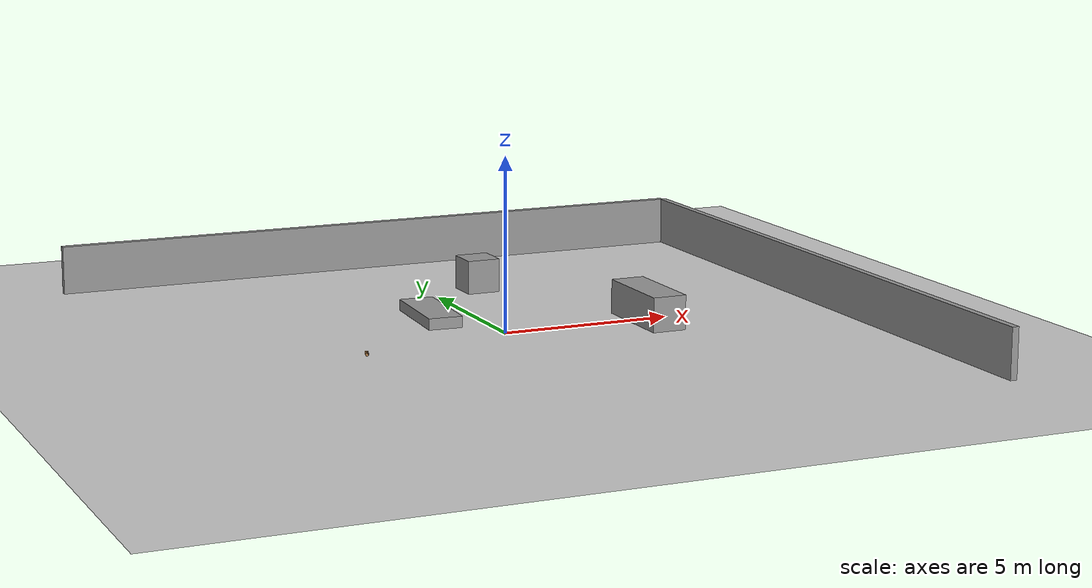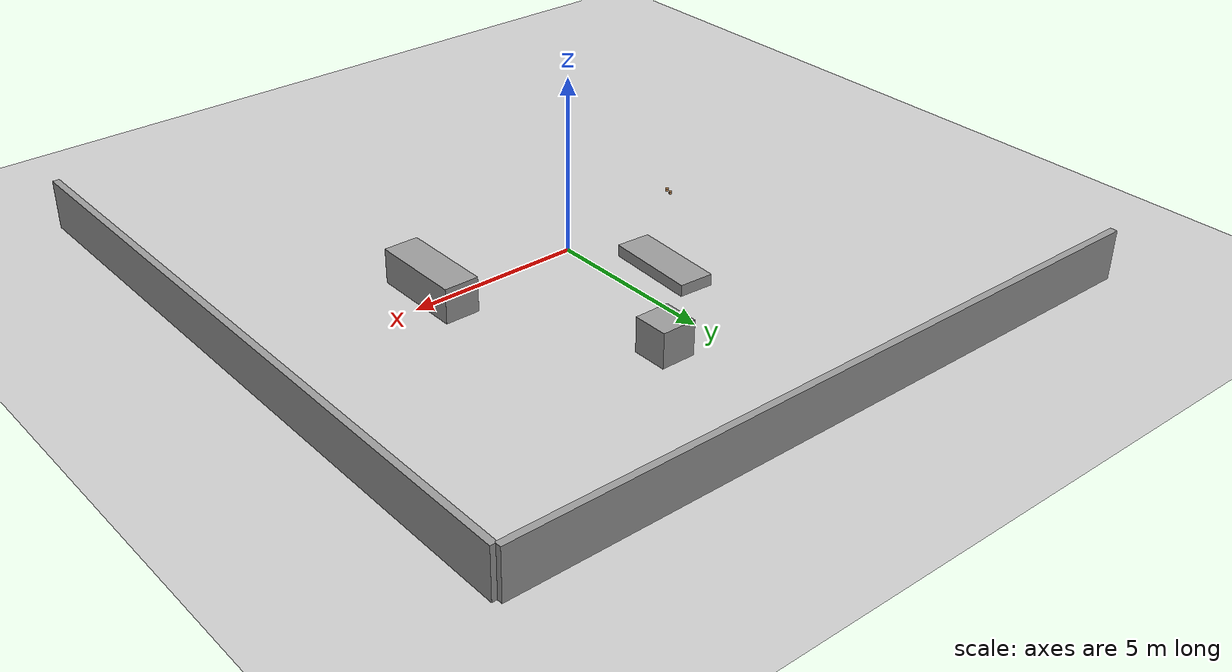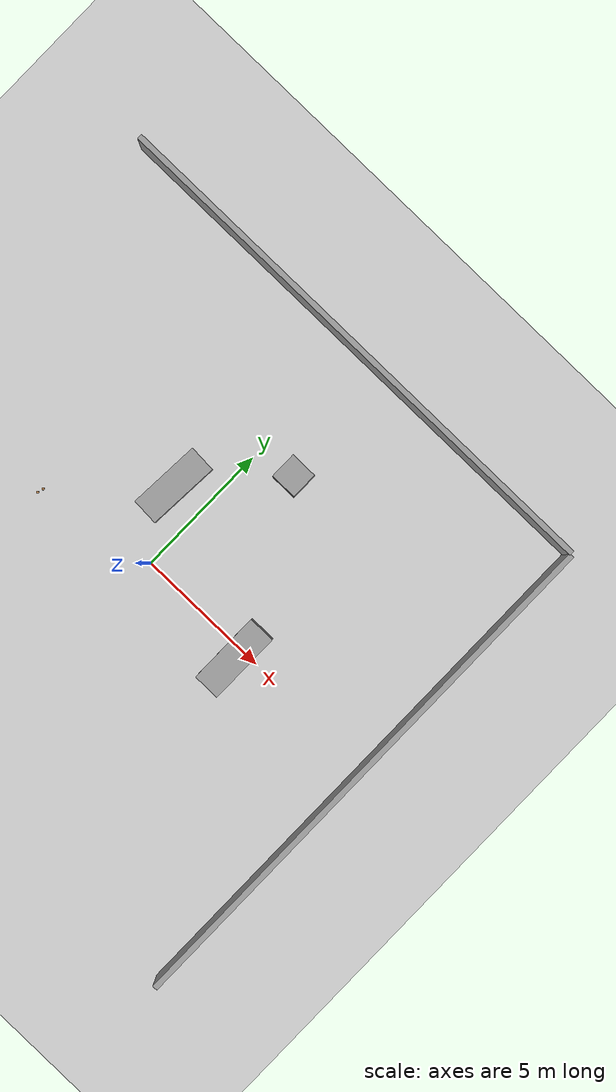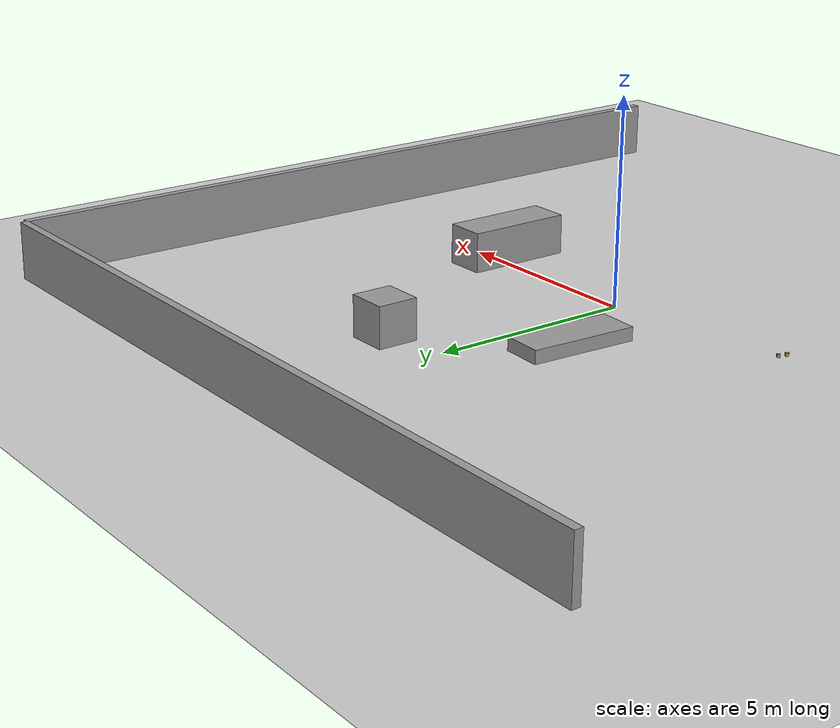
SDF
<sdf version="1.6">
 <world name="default">
  <model name="ground_plane">
   <static>1</static>
   <link name="link">
    <collision name="collision">
     <geometry><plane><normal>0 0 1</normal><size>100 100</size></plane></geometry>
     <surface><friction><ode><mu>100</mu><mu2>50</mu2></ode></friction></surface>
    </collision>
    <visual name="visual">
     <cast_shadows>0</cast_shadows>
     <geometry><plane><normal>0 0 1</normal><size>100 100</size></plane></geometry>
     <material>
      <script><uri>file://media/materials/scripts/gazebo.material</uri><name>Gazebo/Grey</name></script>
     </material>
    </visual>
   </link>
  </model>
  <model name="grey_wall_1">
   <link name="link">
    <inertial>
     <mass>1</mass>
     <inertia><ixx>1</ixx><ixy>0</ixy><ixz>0</ixz><iyy>1</iyy><iyz>0</iyz><izz>1</izz></inertia>
    </inertial>
    <visual name="visual">
     <cast_shadows>0</cast_shadows>
     <geometry><box><size>20 0.2 2.8</size></box></geometry>
     <material>
      <script>
       <uri>model://grey_wall/materials/scripts</uri>
       <uri>model://grey_wall/materials/textures</uri>
       <name>vrc/grey_wall</name>
      </script>
      <ambient>1 1 1 1</ambient>
      <diffuse>1 1 1 1</diffuse>
      <specular>0 0 0 1</specular>
      <emissive>0 0 0 1</emissive>
      <shader type="vertex"><normal_map>__default__</normal_map></shader>
     </material>
    </visual>
    <collision name="collision">
     <geometry><box><size>20 0.2 2.8</size></box></geometry>
     <surface>
      <friction>
       <ode><mu>1</mu><mu2>1</mu2><fdir1>0 0 0</fdir1><slip1>0</slip1><slip2>0</slip2></ode>
       <torsional>
        <coefficient>1</coefficient>
        <patch_radius>0</patch_radius>
        <surface_radius>0</surface_radius>
        <use_patch_radius>1</use_patch_radius>
        <ode><slip>0</slip></ode>
       </torsional>
      </friction>
      <bounce><restitution_coefficient>0</restitution_coefficient><threshold>1e+06</threshold></bounce>
      <contact>
       <collide_without_contact>0</collide_without_contact>
       <collide_without_contact_bitmask>1</collide_without_contact_bitmask>
       <collide_bitmask>1</collide_bitmask>
       <ode>
        <soft_cfm>0</soft_cfm>
        <soft_erp>0.2</soft_erp>
        <kp>1e+13</kp>
        <kd>1</kd>
        <max_vel>0.01</max_vel>
        <min_depth>0</min_depth>
       </ode>
       <bullet>
        <split_impulse>1</split_impulse>
        <split_impulse_penetration_threshold>-0.01</split_impulse_penetration_threshold>
        <soft_cfm>0</soft_cfm>
        <soft_erp>0.2</soft_erp>
        <kp>1e+13</kp>
        <kd>1</kd>
       </bullet>
      </contact>
     </surface>
    </collision>
   </link>
   <static>1</static>
   <pose>-0.041356 10.0529 3.5e-05 0 -0 0</pose>
  </model>
  <model name="grey_wall_4">
   <link name="link">
    <inertial>
     <mass>1</mass>
     <inertia><ixx>1</ixx><ixy>0</ixy><ixz>0</ixz><iyy>1</iyy><iyz>0</iyz><izz>1</izz></inertia>
    </inertial>
    <visual name="visual">
     <cast_shadows>0</cast_shadows>
     <geometry><box><size>20 0.2 2.8</size></box></geometry>
     <material>
      <script>
       <uri>model://grey_wall/materials/scripts</uri>
       <uri>model://grey_wall/materials/textures</uri>
       <name>vrc/grey_wall</name>
      </script>
      <ambient>1 1 1 1</ambient>
      <diffuse>1 1 1 1</diffuse>
      <specular>0 0 0 1</specular>
      <emissive>0 0 0 1</emissive>
      <shader type="vertex"><normal_map>__default__</normal_map></shader>
     </material>
    </visual>
    <collision name="collision">
     <geometry><box><size>20 0.2 2.8</size></box></geometry>
     <surface>
      <friction>
       <ode><mu>1</mu><mu2>1</mu2><fdir1>0 0 0</fdir1><slip1>0</slip1><slip2>0</slip2></ode>
       <torsional>
        <coefficient>1</coefficient>
        <patch_radius>0</patch_radius>
        <surface_radius>0</surface_radius>
        <use_patch_radius>1</use_patch_radius>
        <ode><slip>0</slip></ode>
       </torsional>
      </friction>
      <bounce><restitution_coefficient>0</restitution_coefficient><threshold>1e+06</threshold></bounce>
      <contact>
       <collide_without_contact>0</collide_without_contact>
       <collide_without_contact_bitmask>1</collide_without_contact_bitmask>
       <collide_bitmask>1</collide_bitmask>
       <ode>
        <soft_cfm>0</soft_cfm>
        <soft_erp>0.2</soft_erp>
        <kp>1e+13</kp>
        <kd>1</kd>
        <max_vel>0.01</max_vel>
        <min_depth>0</min_depth>
       </ode>
       <bullet>
        <split_impulse>1</split_impulse>
        <split_impulse_penetration_threshold>-0.01</split_impulse_penetration_threshold>
        <soft_cfm>0</soft_cfm>
        <soft_erp>0.2</soft_erp>
        <kp>1e+13</kp>
        <kd>1</kd>
       </bullet>
      </contact>
     </surface>
    </collision>
   </link>
   <static>1</static>
   <pose>10 0 0 0 -0 1.5708</pose>
  </model>
  <model name="unit_box_0">
   <pose>-1.25919 2.45747 0.163927 -0.000143 -0 -0.058235</pose>
   <link name="link">
    <inertial>
     <mass>1</mass>
     <inertia>
      <ixx>0.166667</ixx>
      <ixy>0</ixy>
      <ixz>0</ixz>
      <iyy>0.166667</iyy>
      <iyz>0</iyz>
      <izz>0.166667</izz>
     </inertia>
    </inertial>
    <collision name="collision"><geometry><box><size>1 2.67 0.328237</size></box></geometry></collision>
    <visual name="visual">
     <geometry><box><size>1 2.67 0.328237</size></box></geometry>
     <material>
      <script><name>Gazebo/Grey</name><uri>file://media/materials/scripts/gazebo.material</uri></script>
     </material>
    </visual>
   </link>
  </model>
  <model name="unit_box_2">
   <pose>4.2885 -0.300666 0.499904 7.2e-05 -0 0</pose>
   <link name="link">
    <inertial>
     <mass>1</mass>
     <inertia>
      <ixx>0.166667</ixx>
      <ixy>0</ixy>
      <ixz>0</ixz>
      <iyy>0.166667</iyy>
      <iyz>0</iyz>
      <izz>0.166667</izz>
     </inertia>
    </inertial>
    <collision name="collision"><geometry><box><size>1 2.6886 1</size></box></geometry></collision>
    <visual name="visual">
     <geometry><box><size>1 2.6886 1</size></box></geometry>
     <material>
      <script><name>Gazebo/Grey</name><uri>file://media/materials/scripts/gazebo.material</uri></script>
     </material>
    </visual>
   </link>
  </model>
  <model name="unit_box_7">
   <pose>1.47283 5.49708 0.499995 0 -1e-05 0</pose>
   <link name="link">
    <inertial>
     <mass>1</mass>
     <inertia>
      <ixx>0.166667</ixx>
      <ixy>0</ixy>
      <ixz>0</ixz>
      <iyy>0.166667</iyy>
      <iyz>0</iyz>
      <izz>0.166667</izz>
     </inertia>
    </inertial>
    <collision name="collision"><geometry><box><size>1 1 1</size></box></geometry></collision>
    <visual name="visual">
     <geometry><box><size>1 1 1</size></box></geometry>
     <material>
      <script><name>Gazebo/Grey</name><uri>file://media/materials/scripts/gazebo.material</uri></script>
     </material>
    </visual>
   </link>
  </model>
  <model name="wood_cube_7_5cm_clone_7_clone_1_clone_2">
   <link name="link">
    <pose>0 0 0.0375 0 -0 0</pose>
    <inertial>
     <mass>0.2249</mass>
     <inertia>
      <ixx>0.000210844</ixx>
      <ixy>0</ixy>
      <ixz>0</ixz>
      <iyy>0.000210844</iyy>
      <iyz>0</iyz>
      <izz>0.000210844</izz>
     </inertia>
    </inertial>
    <collision name="collision">
     <geometry><box><size>0.075 0.075 0.075</size></box></geometry>
     <surface>
      <contact>
       <poissons_ratio>0.347</poissons_ratio>
       <elastic_modulus>8.8e+09</elastic_modulus>
       <ode><kp>100000</kp><kd>100</kd><max_vel>100</max_vel><min_depth>0.001</min_depth></ode>
      </contact>
      <friction>
       <torsional>
        <coefficient>1</coefficient>
        <use_patch_radius>0</use_patch_radius>
        <surface_radius>0.01</surface_radius>
       </torsional>
      </friction>
     </surface>
    </collision>
    <visual name="visual">
     <geometry><box><size>0.075 0.075 0.075</size></box></geometry>
     <material>
      <script><uri>file://media/materials/scripts/gazebo.material</uri><name>Gazebo/Wood</name></script>
     </material>
    </visual>
   </link>
   <pose>-4.39812 -0.721146 -0.001005 0 0 -0.673004</pose>
  </model>
  <model name="wood_cube_7_5cm_clone_7_clone_1_clone_3">
   <link name="link">
    <pose>0 0 0.0375 0 -0 0</pose>
    <inertial>
     <mass>0.2249</mass>
     <inertia>
      <ixx>0.000210844</ixx>
      <ixy>0</ixy>
      <ixz>0</ixz>
      <iyy>0.000210844</iyy>
      <iyz>0</iyz>
      <izz>0.000210844</izz>
     </inertia>
    </inertial>
    <collision name="collision">
     <geometry><box><size>0.075 0.075 0.075</size></box></geometry>
     <surface>
      <contact>
       <poissons_ratio>0.347</poissons_ratio>
       <elastic_modulus>8.8e+09</elastic_modulus>
       <ode><kp>100000</kp><kd>100</kd><max_vel>100</max_vel><min_depth>0.001</min_depth></ode>
      </contact>
      <friction>
       <torsional>
        <coefficient>1</coefficient>
        <use_patch_radius>0</use_patch_radius>
        <surface_radius>0.01</surface_radius>
       </torsional>
      </friction>
     </surface>
    </collision>
    <visual name="visual">
     <geometry><box><size>0.075 0.075 0.075</size></box></geometry>
     <material>
      <script><uri>file://media/materials/scripts/gazebo.material</uri><name>Gazebo/Wood</name></script>
     </material>
    </visual>
   </link>
   <pose>-4.45913 -0.929737 -0.001005 0 0 -0.685305</pose>
  </model>
 </world>
</sdf>
